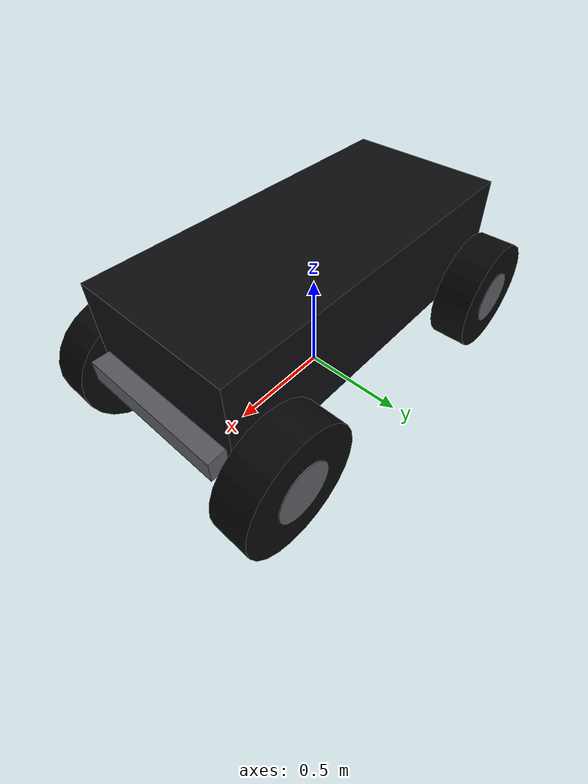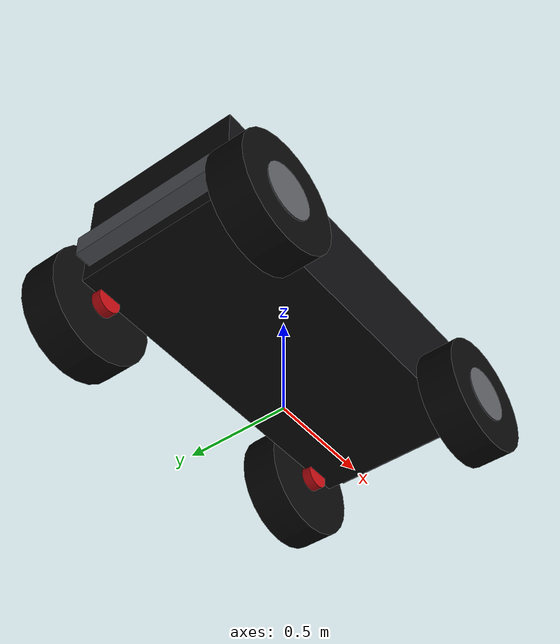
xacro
<?xml version="1.0"?>
<robot name="luchs_b" xmlns:xacro="http://www.ros.org/wiki/xacro">
  <xacro:arg name="variant" default="standard"/>
  <xacro:arg name="prefix" default=""/>
  <xacro:arg name="laser_example" default="true"/>

  <xacro:include filename="$(find luchs_description)/urdf/luchs_b_macro.xacro"/>

  <xacro:luchs_b prefix="$(arg prefix)" variant="$(arg variant)" laser_example="$(arg laser_example)"/>
</robot>

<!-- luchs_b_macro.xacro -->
<robot xmlns:xacro="http://www.ros.org/wiki/xacro">

  <xacro:property name="PI" value="3.141592653589793"/>
  <xacro:property name="b_wheel_radius" value="0.2794"/>     <!-- 22 in tyre -->
  <xacro:property name="b_wheel_width" value="0.178"/>       <!-- 7 in -->
  <xacro:property name="b_half_wb" value="0.715"/>           <!-- wheelbase 1.430 (chassis team: 1.445, to be confirmed) -->
  <xacro:property name="b_half_track" value="0.485"/>        <!-- track 0.970 (top view: 0.990, to be confirmed) -->
  <xacro:property name="b_steer_lim" value="0.5236"/>        <!-- 30 deg road-wheel angle, to be confirmed -->
  <xacro:property name="b_mass" value="230.0"/>
  <xacro:property name="b_wheel_mass" value="18.0"/>         <!-- tyre + rim + hub motor, estimate -->
  <xacro:property name="b_steer_mass" value="4.0"/>          <!-- knuckle / upright, estimate -->
  <xacro:property name="b_body_len" value="1.700"/>          <!-- body shell, estimate -->
  <xacro:property name="b_body_wid" value="0.760"/>          <!-- between the tyres -->
  <xacro:property name="b_clearance" value="0.300"/>
  <xacro:property name="b_height" value="0.800"/>

  <material name="luchs_b_body_standard"><color rgba="0.05 0.05 0.06 1.0"/></material>
  <material name="luchs_b_body_cooling"><color rgba="0.92 0.92 0.90 1.0"/></material>
  <material name="luchs_b_tyre"><color rgba="0.03 0.03 0.03 1.0"/></material>
  <material name="luchs_b_hub"><color rgba="0.35 0.36 0.38 1.0"/></material>
  <material name="luchs_b_red"><color rgba="0.753 0.043 0.067 1.0"/></material>

  <xacro:macro name="b_box_inertial" params="m x y z *origin">
    <inertial>
      <xacro:insert_block name="origin"/>
      <mass value="${m}"/>
      <inertia ixx="${m*(y*y+z*z)/12.0}" ixy="0" ixz="0" iyy="${m*(x*x+z*z)/12.0}" iyz="0"
               izz="${m*(x*x+y*y)/12.0}"/>
    </inertial>
  </xacro:macro>

  <!-- fb: +1 front / -1 rear ; lr: +1 left / -1 right -->
  <xacro:macro name="luchs_b_corner" params="prefix name fb lr">
    <link name="${prefix}${name}_steer_link">
      <visual>
        <origin xyz="0 ${-lr*0.11} 0" rpy="${PI/2} 0 0"/>
        <geometry><cylinder radius="0.06" length="0.05"/></geometry>
        <material name="luchs_b_red"/>
      </visual>
      <xacro:b_box_inertial m="${b_steer_mass}" x="0.12" y="0.10" z="0.20">
        <origin xyz="0 ${-lr*0.11} 0" rpy="0 0 0"/>
      </xacro:b_box_inertial>
    </link>
    <joint name="${prefix}${name}_steer_joint" type="revolute">
      <parent link="${prefix}base_link"/>
      <child link="${prefix}${name}_steer_link"/>
      <origin xyz="${fb*b_half_wb} ${lr*b_half_track} 0" rpy="0 0 0"/>
      <axis xyz="0 0 1"/>
      <limit lower="${-b_steer_lim}" upper="${b_steer_lim}" effort="400.0" velocity="1.0"/>  <!-- to be confirmed -->
    </joint>

    <link name="${prefix}${name}_wheel_link">
      <visual>
        <origin xyz="0 0 0" rpy="${PI/2} 0 0"/>
        <geometry><cylinder radius="${b_wheel_radius}" length="${b_wheel_width}"/></geometry>
        <material name="luchs_b_tyre"/>
      </visual>
      <visual>
        <origin xyz="0 ${lr*(b_wheel_width/2 + 0.002)} 0" rpy="${PI/2} 0 0"/>
        <geometry><cylinder radius="0.13" length="0.006"/></geometry>
        <material name="luchs_b_hub"/>
      </visual>
      <collision>
        <origin xyz="0 0 0" rpy="${PI/2} 0 0"/>
        <geometry><cylinder radius="${b_wheel_radius}" length="${b_wheel_width}"/></geometry>
      </collision>
      <inertial>
        <origin xyz="0 0 0" rpy="0 0 0"/>
        <mass value="${b_wheel_mass}"/>
        <inertia ixx="${b_wheel_mass*(3*b_wheel_radius*b_wheel_radius+b_wheel_width*b_wheel_width)/12.0}"
                 ixy="0" ixz="0" iyy="${b_wheel_mass*b_wheel_radius*b_wheel_radius/2.0}" iyz="0"
                 izz="${b_wheel_mass*(3*b_wheel_radius*b_wheel_radius+b_wheel_width*b_wheel_width)/12.0}"/>
      </inertial>
    </link>
    <joint name="${prefix}${name}_wheel_joint" type="continuous">
      <parent link="${prefix}${name}_steer_link"/>
      <child link="${prefix}${name}_wheel_link"/>
      <origin xyz="0 0 0" rpy="0 0 0"/>
      <axis xyz="0 1 0"/>
      <limit effort="330.0" velocity="40.0"/>   <!-- 330 N m peak per wheel; 40 km/h = 39.8 rad/s -->
    </joint>
  </xacro:macro>

  <xacro:macro name="luchs_b" params="prefix:='' variant:='standard' laser_example:=true">
    <xacro:if value="${variant not in ['standard', 'cooling']}">
      ${xacro.fatal('luchs_b: variant must be standard or cooling (got: ' + str(variant) + ')')}
    </xacro:if>
    <xacro:property name="zmin" value="${b_clearance - b_wheel_radius}"/>
    <xacro:property name="deck_z" value="${b_height - b_wheel_radius}"/>
    <xacro:property name="body_h" value="${deck_z - zmin}"/>
    <xacro:property name="body_mass" value="${b_mass - 4*b_wheel_mass - 4*b_steer_mass}"/>

    <link name="${prefix}base_footprint"/>
    <joint name="${prefix}base_footprint_joint" type="fixed">
      <parent link="${prefix}base_footprint"/>
      <child link="${prefix}base_link"/>
      <origin xyz="0 0 ${b_wheel_radius}" rpy="0 0 0"/>
    </joint>

    <link name="${prefix}base_link">
      <visual>
        <origin xyz="0 0 ${(deck_z + zmin)/2}" rpy="0 0 0"/>
        <geometry><box size="${b_body_len} ${b_body_wid} ${body_h}"/></geometry>
        <material name="luchs_b_body_${variant}"/>
      </visual>
      <!-- front and rear bumpers -->
      <visual>
        <origin xyz="${b_body_len/2 + 0.04} 0 ${zmin + 0.12}" rpy="0 0 0"/>
        <geometry><box size="0.08 ${b_body_wid - 0.06} 0.10"/></geometry>
        <material name="luchs_b_hub"/>
      </visual>
      <visual>
        <origin xyz="${-b_body_len/2 - 0.04} 0 ${zmin + 0.12}" rpy="0 0 0"/>
        <geometry><box size="0.08 ${b_body_wid - 0.06} 0.10"/></geometry>
        <material name="luchs_b_hub"/>
      </visual>
      <collision>
        <origin xyz="0 0 ${(deck_z + zmin)/2}" rpy="0 0 0"/>
        <geometry><box size="${b_body_len} ${b_body_wid} ${body_h}"/></geometry>
      </collision>
      <xacro:b_box_inertial m="${body_mass}" x="${b_body_len}" y="${b_body_wid}" z="${body_h}">
        <origin xyz="0 0 ${(deck_z + zmin)/2 - 0.05}" rpy="0 0 0"/>   <!-- batteries low: estimate -->
      </xacro:b_box_inertial>
    </link>

    <xacro:luchs_b_corner prefix="${prefix}" name="front_left"  fb="1"  lr="1"/>
    <xacro:luchs_b_corner prefix="${prefix}" name="front_right" fb="1"  lr="-1"/>
    <xacro:luchs_b_corner prefix="${prefix}" name="rear_left"   fb="-1" lr="1"/>
    <xacro:luchs_b_corner prefix="${prefix}" name="rear_right"  fb="-1" lr="-1"/>

    <link name="${prefix}imu_link"/>
    <joint name="${prefix}imu_joint" type="fixed">
      <parent link="${prefix}base_link"/>
      <child link="${prefix}imu_link"/>
      <origin xyz="0 0 0" rpy="0 0 0"/>   <!-- PLACEHOLDER: chassis IMU position to be confirmed -->
    </joint>

    <link name="${prefix}top_plate_link"/>
    <joint name="${prefix}top_plate_joint" type="fixed">
      <parent link="${prefix}base_link"/>
      <child link="${prefix}top_plate_link"/>
      <origin xyz="0 0 ${deck_z}" rpy="0 0 0"/>
    </joint>

    <xacro:if value="${laser_example}">
      <link name="${prefix}laser_link"/>
      <joint name="${prefix}laser_joint" type="fixed">
        <parent link="${prefix}top_plate_link"/>
        <child link="${prefix}laser_link"/>
        <origin xyz="0.750 0 0" rpy="0 0 0"/>
      </joint>
    </xacro:if>
  </xacro:macro>

</robot>
